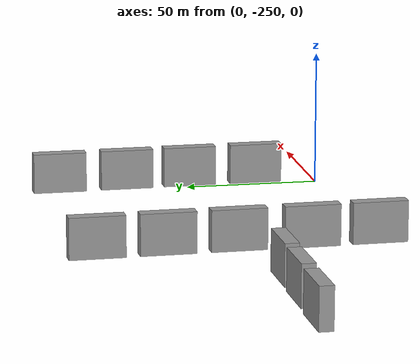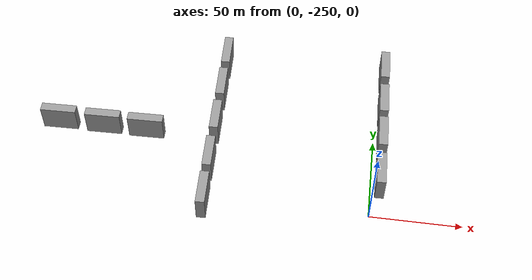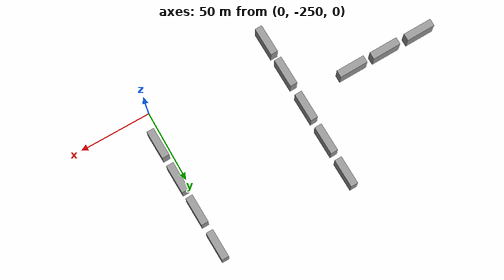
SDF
<sdf version="1.6">
 <world name="darpa_boxes">
  <model name="box_2">
   <link name="link">
    <inertial>
     <mass>1</mass>
     <inertia>
      <ixx>0.166667</ixx>
      <ixy>0</ixy>
      <ixz>0</ixz>
      <iyy>0.166667</iyy>
      <iyz>0</iyz>
      <izz>0.166667</izz>
     </inertia>
     <pose>0 0 7.5 0 -0 0</pose>
    </inertial>
    <visual name="visual">
     <geometry><box><size>5 20 15</size></box></geometry>
     <material>
      <script><name>Gazebo/Grey</name><uri>file://media/materials/scripts/gazebo.material</uri></script>
      <shader type="vertex"><normal_map>_default_</normal_map></shader>
      <ambient>0.3 0.3 0.3 1</ambient>
      <diffuse>0.7 0.7 0.7 1</diffuse>
      <specular>0.01 0.01 0.01 1</specular>
      <emissive>0 0 0 1</emissive>
     </material>
     <pose>0 0 7.5 0 -0 0</pose>
    </visual>
    <collision name="collision">
     <pose>0 0 7.5 0 -0 0</pose>
     <geometry><box><size>5 20 15</size></box></geometry>
     <surface>
      <friction>
       <ode><mu>1</mu><mu2>1</mu2><fdir1>0 0 0</fdir1><slip1>0</slip1><slip2>0</slip2></ode>
       <torsional>
        <coefficient>1</coefficient>
        <patch_radius>0</patch_radius>
        <surface_radius>0</surface_radius>
        <use_patch_radius>1</use_patch_radius>
        <ode><slip>0</slip></ode>
       </torsional>
      </friction>
      <bounce><restitution_coefficient>0</restitution_coefficient><threshold>1e+06</threshold></bounce>
      <contact>
       <collide_without_contact>0</collide_without_contact>
       <collide_without_contact_bitmask>1</collide_without_contact_bitmask>
       <collide_bitmask>1</collide_bitmask>
       <ode>
        <soft_cfm>0</soft_cfm>
        <soft_erp>0.2</soft_erp>
        <kp>1e+13</kp>
        <kd>1</kd>
        <max_vel>0.01</max_vel>
        <min_depth>0</min_depth>
       </ode>
       <bullet>
        <split_impulse>1</split_impulse>
        <split_impulse_penetration_threshold>-0.01</split_impulse_penetration_threshold>
        <soft_cfm>0</soft_cfm>
        <soft_erp>0.2</soft_erp>
        <kp>1e+13</kp>
        <kd>1</kd>
       </bullet>
      </contact>
     </surface>
    </collision>
   </link>
   <static>1</static>
   <pose>3.68929 -151.222 -0.049551 0.005047 -0.000114 0.022472</pose>
  </model>
  <model name="box_3">
   <link name="link">
    <inertial>
     <mass>1</mass>
     <inertia>
      <ixx>0.166667</ixx>
      <ixy>0</ixy>
      <ixz>0</ixz>
      <iyy>0.166667</iyy>
      <iyz>0</iyz>
      <izz>0.166667</izz>
     </inertia>
     <pose>0 0 7.5 0 -0 0</pose>
    </inertial>
    <visual name="visual">
     <geometry><box><size>5 20 15</size></box></geometry>
     <material>
      <script><name>Gazebo/Grey</name><uri>file://media/materials/scripts/gazebo.material</uri></script>
      <shader type="vertex"><normal_map>_default_</normal_map></shader>
      <ambient>0.3 0.3 0.3 1</ambient>
      <diffuse>0.7 0.7 0.7 1</diffuse>
      <specular>0.01 0.01 0.01 1</specular>
      <emissive>0 0 0 1</emissive>
     </material>
     <pose>0 0 7.5 0 -0 0</pose>
    </visual>
    <collision name="collision">
     <pose>0 0 7.5 0 -0 0</pose>
     <geometry><box><size>5 20 15</size></box></geometry>
     <surface>
      <friction>
       <ode><mu>1</mu><mu2>1</mu2><fdir1>0 0 0</fdir1><slip1>0</slip1><slip2>0</slip2></ode>
       <torsional>
        <coefficient>1</coefficient>
        <patch_radius>0</patch_radius>
        <surface_radius>0</surface_radius>
        <use_patch_radius>1</use_patch_radius>
        <ode><slip>0</slip></ode>
       </torsional>
      </friction>
      <bounce><restitution_coefficient>0</restitution_coefficient><threshold>1e+06</threshold></bounce>
      <contact>
       <collide_without_contact>0</collide_without_contact>
       <collide_without_contact_bitmask>1</collide_without_contact_bitmask>
       <collide_bitmask>1</collide_bitmask>
       <ode>
        <soft_cfm>0</soft_cfm>
        <soft_erp>0.2</soft_erp>
        <kp>1e+13</kp>
        <kd>1</kd>
        <max_vel>0.01</max_vel>
        <min_depth>0</min_depth>
       </ode>
       <bullet>
        <split_impulse>1</split_impulse>
        <split_impulse_penetration_threshold>-0.01</split_impulse_penetration_threshold>
        <soft_cfm>0</soft_cfm>
        <soft_erp>0.2</soft_erp>
        <kp>1e+13</kp>
        <kd>1</kd>
       </bullet>
      </contact>
     </surface>
    </collision>
   </link>
   <static>1</static>
   <pose>4.1621 -176.965 -0.049551 0.005047 -0.000114 0.022472</pose>
  </model>
  <model name="box_4">
   <link name="link">
    <inertial>
     <mass>1</mass>
     <inertia>
      <ixx>0.166667</ixx>
      <ixy>0</ixy>
      <ixz>0</ixz>
      <iyy>0.166667</iyy>
      <iyz>0</iyz>
      <izz>0.166667</izz>
     </inertia>
     <pose>0 0 7.5 0 -0 0</pose>
    </inertial>
    <visual name="visual">
     <geometry><box><size>5 20 15</size></box></geometry>
     <material>
      <script><name>Gazebo/Grey</name><uri>file://media/materials/scripts/gazebo.material</uri></script>
      <shader type="vertex"><normal_map>_default_</normal_map></shader>
      <ambient>0.3 0.3 0.3 1</ambient>
      <diffuse>0.7 0.7 0.7 1</diffuse>
      <specular>0.01 0.01 0.01 1</specular>
      <emissive>0 0 0 1</emissive>
     </material>
     <pose>0 0 7.5 0 -0 0</pose>
    </visual>
    <collision name="collision">
     <pose>0 0 7.5 0 -0 0</pose>
     <geometry><box><size>5 20 15</size></box></geometry>
     <surface>
      <friction>
       <ode><mu>1</mu><mu2>1</mu2><fdir1>0 0 0</fdir1><slip1>0</slip1><slip2>0</slip2></ode>
       <torsional>
        <coefficient>1</coefficient>
        <patch_radius>0</patch_radius>
        <surface_radius>0</surface_radius>
        <use_patch_radius>1</use_patch_radius>
        <ode><slip>0</slip></ode>
       </torsional>
      </friction>
      <bounce><restitution_coefficient>0</restitution_coefficient><threshold>1e+06</threshold></bounce>
      <contact>
       <collide_without_contact>0</collide_without_contact>
       <collide_without_contact_bitmask>1</collide_without_contact_bitmask>
       <collide_bitmask>1</collide_bitmask>
       <ode>
        <soft_cfm>0</soft_cfm>
        <soft_erp>0.2</soft_erp>
        <kp>1e+13</kp>
        <kd>1</kd>
        <max_vel>0.01</max_vel>
        <min_depth>0</min_depth>
       </ode>
       <bullet>
        <split_impulse>1</split_impulse>
        <split_impulse_penetration_threshold>-0.01</split_impulse_penetration_threshold>
        <soft_cfm>0</soft_cfm>
        <soft_erp>0.2</soft_erp>
        <kp>1e+13</kp>
        <kd>1</kd>
       </bullet>
      </contact>
     </surface>
    </collision>
   </link>
   <static>1</static>
   <pose>4.69386 -201.317 -0.049551 0.005047 -0.000114 0.022472</pose>
  </model>
  <model name="box_5">
   <link name="link">
    <inertial>
     <mass>1</mass>
     <inertia>
      <ixx>0.166667</ixx>
      <ixy>0</ixy>
      <ixz>0</ixz>
      <iyy>0.166667</iyy>
      <iyz>0</iyz>
      <izz>0.166667</izz>
     </inertia>
     <pose>0 0 7.5 0 -0 0</pose>
    </inertial>
    <visual name="visual">
     <geometry><box><size>5 20 15</size></box></geometry>
     <material>
      <script><name>Gazebo/Grey</name><uri>file://media/materials/scripts/gazebo.material</uri></script>
      <shader type="vertex"><normal_map>_default_</normal_map></shader>
      <ambient>0.3 0.3 0.3 1</ambient>
      <diffuse>0.7 0.7 0.7 1</diffuse>
      <specular>0.01 0.01 0.01 1</specular>
      <emissive>0 0 0 1</emissive>
     </material>
     <pose>0 0 7.5 0 -0 0</pose>
    </visual>
    <collision name="collision">
     <pose>0 0 7.5 0 -0 0</pose>
     <geometry><box><size>5 20 15</size></box></geometry>
     <surface>
      <friction>
       <ode><mu>1</mu><mu2>1</mu2><fdir1>0 0 0</fdir1><slip1>0</slip1><slip2>0</slip2></ode>
       <torsional>
        <coefficient>1</coefficient>
        <patch_radius>0</patch_radius>
        <surface_radius>0</surface_radius>
        <use_patch_radius>1</use_patch_radius>
        <ode><slip>0</slip></ode>
       </torsional>
      </friction>
      <bounce><restitution_coefficient>0</restitution_coefficient><threshold>1e+06</threshold></bounce>
      <contact>
       <collide_without_contact>0</collide_without_contact>
       <collide_without_contact_bitmask>1</collide_without_contact_bitmask>
       <collide_bitmask>1</collide_bitmask>
       <ode>
        <soft_cfm>0</soft_cfm>
        <soft_erp>0.2</soft_erp>
        <kp>1e+13</kp>
        <kd>1</kd>
        <max_vel>0.01</max_vel>
        <min_depth>0</min_depth>
       </ode>
       <bullet>
        <split_impulse>1</split_impulse>
        <split_impulse_penetration_threshold>-0.01</split_impulse_penetration_threshold>
        <soft_cfm>0</soft_cfm>
        <soft_erp>0.2</soft_erp>
        <kp>1e+13</kp>
        <kd>1</kd>
       </bullet>
      </contact>
     </surface>
    </collision>
   </link>
   <static>1</static>
   <pose>4.85871 -226.99 -0.049551 0.005047 -0.000114 0.022472</pose>
  </model>
  <model name="box_40">
   <link name="link">
    <inertial>
     <mass>1</mass>
     <inertia>
      <ixx>0.166667</ixx>
      <ixy>0</ixy>
      <ixz>0</ixz>
      <iyy>0.166667</iyy>
      <iyz>0</iyz>
      <izz>0.166667</izz>
     </inertia>
     <pose>0 0 7.5 0 -0 0</pose>
    </inertial>
    <visual name="visual">
     <geometry><box><size>5 20 15</size></box></geometry>
     <material>
      <script><name>Gazebo/Grey</name><uri>file://media/materials/scripts/gazebo.material</uri></script>
      <shader type="vertex"><normal_map>_default_</normal_map></shader>
      <ambient>0.3 0.3 0.3 1</ambient>
      <diffuse>0.7 0.7 0.7 1</diffuse>
      <specular>0.01 0.01 0.01 1</specular>
      <emissive>0 0 0 1</emissive>
     </material>
     <pose>0 0 7.5 0 -0 0</pose>
    </visual>
    <collision name="collision">
     <pose>0 0 7.5 0 -0 0</pose>
     <geometry><box><size>5 20 15</size></box></geometry>
     <surface>
      <friction>
       <ode><mu>1</mu><mu2>1</mu2><fdir1>0 0 0</fdir1><slip1>0</slip1><slip2>0</slip2></ode>
       <torsional>
        <coefficient>1</coefficient>
        <patch_radius>0</patch_radius>
        <surface_radius>0</surface_radius>
        <use_patch_radius>1</use_patch_radius>
        <ode><slip>0</slip></ode>
       </torsional>
      </friction>
      <bounce><restitution_coefficient>0</restitution_coefficient><threshold>1e+06</threshold></bounce>
      <contact>
       <collide_without_contact>0</collide_without_contact>
       <collide_without_contact_bitmask>1</collide_without_contact_bitmask>
       <collide_bitmask>1</collide_bitmask>
       <ode>
        <soft_cfm>0</soft_cfm>
        <soft_erp>0.2</soft_erp>
        <kp>1e+13</kp>
        <kd>1</kd>
        <max_vel>0.01</max_vel>
        <min_depth>0</min_depth>
       </ode>
       <bullet>
        <split_impulse>1</split_impulse>
        <split_impulse_penetration_threshold>-0.01</split_impulse_penetration_threshold>
        <soft_cfm>0</soft_cfm>
        <soft_erp>0.2</soft_erp>
        <kp>1e+13</kp>
        <kd>1</kd>
       </bullet>
      </contact>
     </surface>
    </collision>
   </link>
   <static>1</static>
   <pose>-89.2435 -252.007 -0.049551 0.005046 -0.000145 0.028592</pose>
  </model>
  <model name="box_41">
   <link name="link">
    <inertial>
     <mass>1</mass>
     <inertia>
      <ixx>0.166667</ixx>
      <ixy>0</ixy>
      <ixz>0</ixz>
      <iyy>0.166667</iyy>
      <iyz>0</iyz>
      <izz>0.166667</izz>
     </inertia>
     <pose>0 0 7.5 0 -0 0</pose>
    </inertial>
    <visual name="visual">
     <geometry><box><size>5 20 15</size></box></geometry>
     <material>
      <script><name>Gazebo/Grey</name><uri>file://media/materials/scripts/gazebo.material</uri></script>
      <shader type="vertex"><normal_map>_default_</normal_map></shader>
      <ambient>0.3 0.3 0.3 1</ambient>
      <diffuse>0.7 0.7 0.7 1</diffuse>
      <specular>0.01 0.01 0.01 1</specular>
      <emissive>0 0 0 1</emissive>
     </material>
     <pose>0 0 7.5 0 -0 0</pose>
    </visual>
    <collision name="collision">
     <pose>0 0 7.5 0 -0 0</pose>
     <geometry><box><size>5 20 15</size></box></geometry>
     <surface>
      <friction>
       <ode><mu>1</mu><mu2>1</mu2><fdir1>0 0 0</fdir1><slip1>0</slip1><slip2>0</slip2></ode>
       <torsional>
        <coefficient>1</coefficient>
        <patch_radius>0</patch_radius>
        <surface_radius>0</surface_radius>
        <use_patch_radius>1</use_patch_radius>
        <ode><slip>0</slip></ode>
       </torsional>
      </friction>
      <bounce><restitution_coefficient>0</restitution_coefficient><threshold>1e+06</threshold></bounce>
      <contact>
       <collide_without_contact>0</collide_without_contact>
       <collide_without_contact_bitmask>1</collide_without_contact_bitmask>
       <collide_bitmask>1</collide_bitmask>
       <ode>
        <soft_cfm>0</soft_cfm>
        <soft_erp>0.2</soft_erp>
        <kp>1e+13</kp>
        <kd>1</kd>
        <max_vel>0.01</max_vel>
        <min_depth>0</min_depth>
       </ode>
       <bullet>
        <split_impulse>1</split_impulse>
        <split_impulse_penetration_threshold>-0.01</split_impulse_penetration_threshold>
        <soft_cfm>0</soft_cfm>
        <soft_erp>0.2</soft_erp>
        <kp>1e+13</kp>
        <kd>1</kd>
       </bullet>
      </contact>
     </surface>
    </collision>
   </link>
   <static>1</static>
   <pose>-89.8164 -227.586 -0.049551 0.005046 -0.000145 0.028592</pose>
  </model>
  <model name="box_42">
   <link name="link">
    <inertial>
     <mass>1</mass>
     <inertia>
      <ixx>0.166667</ixx>
      <ixy>0</ixy>
      <ixz>0</ixz>
      <iyy>0.166667</iyy>
      <iyz>0</iyz>
      <izz>0.166667</izz>
     </inertia>
     <pose>0 0 7.5 0 -0 0</pose>
    </inertial>
    <visual name="visual">
     <geometry><box><size>5 20 15</size></box></geometry>
     <material>
      <script><name>Gazebo/Grey</name><uri>file://media/materials/scripts/gazebo.material</uri></script>
      <shader type="vertex"><normal_map>_default_</normal_map></shader>
      <ambient>0.3 0.3 0.3 1</ambient>
      <diffuse>0.7 0.7 0.7 1</diffuse>
      <specular>0.01 0.01 0.01 1</specular>
      <emissive>0 0 0 1</emissive>
     </material>
     <pose>0 0 7.5 0 -0 0</pose>
    </visual>
    <collision name="collision">
     <pose>0 0 7.5 0 -0 0</pose>
     <geometry><box><size>5 20 15</size></box></geometry>
     <surface>
      <friction>
       <ode><mu>1</mu><mu2>1</mu2><fdir1>0 0 0</fdir1><slip1>0</slip1><slip2>0</slip2></ode>
       <torsional>
        <coefficient>1</coefficient>
        <patch_radius>0</patch_radius>
        <surface_radius>0</surface_radius>
        <use_patch_radius>1</use_patch_radius>
        <ode><slip>0</slip></ode>
       </torsional>
      </friction>
      <bounce><restitution_coefficient>0</restitution_coefficient><threshold>1e+06</threshold></bounce>
      <contact>
       <collide_without_contact>0</collide_without_contact>
       <collide_without_contact_bitmask>1</collide_without_contact_bitmask>
       <collide_bitmask>1</collide_bitmask>
       <ode>
        <soft_cfm>0</soft_cfm>
        <soft_erp>0.2</soft_erp>
        <kp>1e+13</kp>
        <kd>1</kd>
        <max_vel>0.01</max_vel>
        <min_depth>0</min_depth>
       </ode>
       <bullet>
        <split_impulse>1</split_impulse>
        <split_impulse_penetration_threshold>-0.01</split_impulse_penetration_threshold>
        <soft_cfm>0</soft_cfm>
        <soft_erp>0.2</soft_erp>
        <kp>1e+13</kp>
        <kd>1</kd>
       </bullet>
      </contact>
     </surface>
    </collision>
   </link>
   <static>1</static>
   <pose>-90.0613 -201.445 -0.049551 0.005046 -0.000145 0.028592</pose>
  </model>
  <model name="box_43">
   <link name="link">
    <inertial>
     <mass>1</mass>
     <inertia>
      <ixx>0.166667</ixx>
      <ixy>0</ixy>
      <ixz>0</ixz>
      <iyy>0.166667</iyy>
      <iyz>0</iyz>
      <izz>0.166667</izz>
     </inertia>
     <pose>0 0 7.5 0 -0 0</pose>
    </inertial>
    <visual name="visual">
     <geometry><box><size>5 20 15</size></box></geometry>
     <material>
      <script><name>Gazebo/Grey</name><uri>file://media/materials/scripts/gazebo.material</uri></script>
      <shader type="vertex"><normal_map>_default_</normal_map></shader>
      <ambient>0.3 0.3 0.3 1</ambient>
      <diffuse>0.7 0.7 0.7 1</diffuse>
      <specular>0.01 0.01 0.01 1</specular>
      <emissive>0 0 0 1</emissive>
     </material>
     <pose>0 0 7.5 0 -0 0</pose>
    </visual>
    <collision name="collision">
     <pose>0 0 7.5 0 -0 0</pose>
     <geometry><box><size>5 20 15</size></box></geometry>
     <surface>
      <friction>
       <ode><mu>1</mu><mu2>1</mu2><fdir1>0 0 0</fdir1><slip1>0</slip1><slip2>0</slip2></ode>
       <torsional>
        <coefficient>1</coefficient>
        <patch_radius>0</patch_radius>
        <surface_radius>0</surface_radius>
        <use_patch_radius>1</use_patch_radius>
        <ode><slip>0</slip></ode>
       </torsional>
      </friction>
      <bounce><restitution_coefficient>0</restitution_coefficient><threshold>1e+06</threshold></bounce>
      <contact>
       <collide_without_contact>0</collide_without_contact>
       <collide_without_contact_bitmask>1</collide_without_contact_bitmask>
       <collide_bitmask>1</collide_bitmask>
       <ode>
        <soft_cfm>0</soft_cfm>
        <soft_erp>0.2</soft_erp>
        <kp>1e+13</kp>
        <kd>1</kd>
        <max_vel>0.01</max_vel>
        <min_depth>0</min_depth>
       </ode>
       <bullet>
        <split_impulse>1</split_impulse>
        <split_impulse_penetration_threshold>-0.01</split_impulse_penetration_threshold>
        <soft_cfm>0</soft_cfm>
        <soft_erp>0.2</soft_erp>
        <kp>1e+13</kp>
        <kd>1</kd>
       </bullet>
      </contact>
     </surface>
    </collision>
   </link>
   <static>1</static>
   <pose>-90.425 -176.407 -0.049551 0.005046 -0.000145 0.028592</pose>
  </model>
  <model name="box_44">
   <link name="link">
    <inertial>
     <mass>1</mass>
     <inertia>
      <ixx>0.166667</ixx>
      <ixy>0</ixy>
      <ixz>0</ixz>
      <iyy>0.166667</iyy>
      <iyz>0</iyz>
      <izz>0.166667</izz>
     </inertia>
     <pose>0 0 7.5 0 -0 0</pose>
    </inertial>
    <visual name="visual">
     <geometry><box><size>5 20 15</size></box></geometry>
     <material>
      <script><name>Gazebo/Grey</name><uri>file://media/materials/scripts/gazebo.material</uri></script>
      <shader type="vertex"><normal_map>_default_</normal_map></shader>
      <ambient>0.3 0.3 0.3 1</ambient>
      <diffuse>0.7 0.7 0.7 1</diffuse>
      <specular>0.01 0.01 0.01 1</specular>
      <emissive>0 0 0 1</emissive>
     </material>
     <pose>0 0 7.5 0 -0 0</pose>
    </visual>
    <collision name="collision">
     <pose>0 0 7.5 0 -0 0</pose>
     <geometry><box><size>5 20 15</size></box></geometry>
     <surface>
      <friction>
       <ode><mu>1</mu><mu2>1</mu2><fdir1>0 0 0</fdir1><slip1>0</slip1><slip2>0</slip2></ode>
       <torsional>
        <coefficient>1</coefficient>
        <patch_radius>0</patch_radius>
        <surface_radius>0</surface_radius>
        <use_patch_radius>1</use_patch_radius>
        <ode><slip>0</slip></ode>
       </torsional>
      </friction>
      <bounce><restitution_coefficient>0</restitution_coefficient><threshold>1e+06</threshold></bounce>
      <contact>
       <collide_without_contact>0</collide_without_contact>
       <collide_without_contact_bitmask>1</collide_without_contact_bitmask>
       <collide_bitmask>1</collide_bitmask>
       <ode>
        <soft_cfm>0</soft_cfm>
        <soft_erp>0.2</soft_erp>
        <kp>1e+13</kp>
        <kd>1</kd>
        <max_vel>0.01</max_vel>
        <min_depth>0</min_depth>
       </ode>
       <bullet>
        <split_impulse>1</split_impulse>
        <split_impulse_penetration_threshold>-0.01</split_impulse_penetration_threshold>
        <soft_cfm>0</soft_cfm>
        <soft_erp>0.2</soft_erp>
        <kp>1e+13</kp>
        <kd>1</kd>
       </bullet>
      </contact>
     </surface>
    </collision>
   </link>
   <static>1</static>
   <pose>-90.8552 -151.555 -0.049551 0.005046 -0.000145 0.028592</pose>
  </model>
  <model name="box_62">
   <link name="link">
    <inertial>
     <mass>1</mass>
     <inertia>
      <ixx>0.166667</ixx>
      <ixy>0</ixy>
      <ixz>0</ixz>
      <iyy>0.166667</iyy>
      <iyz>0</iyz>
      <izz>0.166667</izz>
     </inertia>
     <pose>0 0 7.5 0 -0 0</pose>
    </inertial>
    <visual name="visual">
     <geometry><box><size>5 20 15</size></box></geometry>
     <material>
      <script><name>Gazebo/Grey</name><uri>file://media/materials/scripts/gazebo.material</uri></script>
      <shader type="vertex"><normal_map>_default_</normal_map></shader>
      <ambient>0.3 0.3 0.3 1</ambient>
      <diffuse>0.7 0.7 0.7 1</diffuse>
      <specular>0.01 0.01 0.01 1</specular>
      <emissive>0 0 0 1</emissive>
     </material>
     <pose>0 0 7.5 0 -0 0</pose>
    </visual>
    <collision name="collision">
     <pose>0 0 7.5 0 -0 0</pose>
     <geometry><box><size>5 20 15</size></box></geometry>
     <surface>
      <friction>
       <ode><mu>1</mu><mu2>1</mu2><fdir1>0 0 0</fdir1><slip1>0</slip1><slip2>0</slip2></ode>
       <torsional>
        <coefficient>1</coefficient>
        <patch_radius>0</patch_radius>
        <surface_radius>0</surface_radius>
        <use_patch_radius>1</use_patch_radius>
        <ode><slip>0</slip></ode>
       </torsional>
      </friction>
      <bounce><restitution_coefficient>0</restitution_coefficient><threshold>1e+06</threshold></bounce>
      <contact>
       <collide_without_contact>0</collide_without_contact>
       <collide_without_contact_bitmask>1</collide_without_contact_bitmask>
       <collide_bitmask>1</collide_bitmask>
       <ode>
        <soft_cfm>0</soft_cfm>
        <soft_erp>0.2</soft_erp>
        <kp>1e+13</kp>
        <kd>1</kd>
        <max_vel>0.01</max_vel>
        <min_depth>0</min_depth>
       </ode>
       <bullet>
        <split_impulse>1</split_impulse>
        <split_impulse_penetration_threshold>-0.01</split_impulse_penetration_threshold>
        <soft_cfm>0</soft_cfm>
        <soft_erp>0.2</soft_erp>
        <kp>1e+13</kp>
        <kd>1</kd>
       </bullet>
      </contact>
     </surface>
    </collision>
   </link>
   <static>1</static>
   <pose>-179.036 -209.121 -0.049551 8.7e-05 0.005047 -1.55363</pose>
  </model>
  <model name="box_63">
   <link name="link">
    <inertial>
     <mass>1</mass>
     <inertia>
      <ixx>0.166667</ixx>
      <ixy>0</ixy>
      <ixz>0</ixz>
      <iyy>0.166667</iyy>
      <iyz>0</iyz>
      <izz>0.166667</izz>
     </inertia>
     <pose>0 0 7.5 0 -0 0</pose>
    </inertial>
    <visual name="visual">
     <geometry><box><size>5 20 15</size></box></geometry>
     <material>
      <script><name>Gazebo/Grey</name><uri>file://media/materials/scripts/gazebo.material</uri></script>
      <shader type="vertex"><normal_map>_default_</normal_map></shader>
      <ambient>0.3 0.3 0.3 1</ambient>
      <diffuse>0.7 0.7 0.7 1</diffuse>
      <specular>0.01 0.01 0.01 1</specular>
      <emissive>0 0 0 1</emissive>
     </material>
     <pose>0 0 7.5 0 -0 0</pose>
    </visual>
    <collision name="collision">
     <pose>0 0 7.5 0 -0 0</pose>
     <geometry><box><size>5 20 15</size></box></geometry>
     <surface>
      <friction>
       <ode><mu>1</mu><mu2>1</mu2><fdir1>0 0 0</fdir1><slip1>0</slip1><slip2>0</slip2></ode>
       <torsional>
        <coefficient>1</coefficient>
        <patch_radius>0</patch_radius>
        <surface_radius>0</surface_radius>
        <use_patch_radius>1</use_patch_radius>
        <ode><slip>0</slip></ode>
       </torsional>
      </friction>
      <bounce><restitution_coefficient>0</restitution_coefficient><threshold>1e+06</threshold></bounce>
      <contact>
       <collide_without_contact>0</collide_without_contact>
       <collide_without_contact_bitmask>1</collide_without_contact_bitmask>
       <collide_bitmask>1</collide_bitmask>
       <ode>
        <soft_cfm>0</soft_cfm>
        <soft_erp>0.2</soft_erp>
        <kp>1e+13</kp>
        <kd>1</kd>
        <max_vel>0.01</max_vel>
        <min_depth>0</min_depth>
       </ode>
       <bullet>
        <split_impulse>1</split_impulse>
        <split_impulse_penetration_threshold>-0.01</split_impulse_penetration_threshold>
        <soft_cfm>0</soft_cfm>
        <soft_erp>0.2</soft_erp>
        <kp>1e+13</kp>
        <kd>1</kd>
       </bullet>
      </contact>
     </surface>
    </collision>
   </link>
   <static>1</static>
   <pose>-153.509 -209.322 -0.049551 8.7e-05 0.005047 -1.55363</pose>
  </model>
  <model name="box_64">
   <link name="link">
    <inertial>
     <mass>1</mass>
     <inertia>
      <ixx>0.166667</ixx>
      <ixy>0</ixy>
      <ixz>0</ixz>
      <iyy>0.166667</iyy>
      <iyz>0</iyz>
      <izz>0.166667</izz>
     </inertia>
     <pose>0 0 7.5 0 -0 0</pose>
    </inertial>
    <visual name="visual">
     <geometry><box><size>5 20 15</size></box></geometry>
     <material>
      <script><name>Gazebo/Grey</name><uri>file://media/materials/scripts/gazebo.material</uri></script>
      <shader type="vertex"><normal_map>_default_</normal_map></shader>
      <ambient>0.3 0.3 0.3 1</ambient>
      <diffuse>0.7 0.7 0.7 1</diffuse>
      <specular>0.01 0.01 0.01 1</specular>
      <emissive>0 0 0 1</emissive>
     </material>
     <pose>0 0 7.5 0 -0 0</pose>
    </visual>
    <collision name="collision">
     <pose>0 0 7.5 0 -0 0</pose>
     <geometry><box><size>5 20 15</size></box></geometry>
     <surface>
      <friction>
       <ode><mu>1</mu><mu2>1</mu2><fdir1>0 0 0</fdir1><slip1>0</slip1><slip2>0</slip2></ode>
       <torsional>
        <coefficient>1</coefficient>
        <patch_radius>0</patch_radius>
        <surface_radius>0</surface_radius>
        <use_patch_radius>1</use_patch_radius>
        <ode><slip>0</slip></ode>
       </torsional>
      </friction>
      <bounce><restitution_coefficient>0</restitution_coefficient><threshold>1e+06</threshold></bounce>
      <contact>
       <collide_without_contact>0</collide_without_contact>
       <collide_without_contact_bitmask>1</collide_without_contact_bitmask>
       <collide_bitmask>1</collide_bitmask>
       <ode>
        <soft_cfm>0</soft_cfm>
        <soft_erp>0.2</soft_erp>
        <kp>1e+13</kp>
        <kd>1</kd>
        <max_vel>0.01</max_vel>
        <min_depth>0</min_depth>
       </ode>
       <bullet>
        <split_impulse>1</split_impulse>
        <split_impulse_penetration_threshold>-0.01</split_impulse_penetration_threshold>
        <soft_cfm>0</soft_cfm>
        <soft_erp>0.2</soft_erp>
        <kp>1e+13</kp>
        <kd>1</kd>
       </bullet>
      </contact>
     </surface>
    </collision>
   </link>
   <static>1</static>
   <pose>-128.882 -209.402 -0.049551 8.7e-05 0.005047 -1.55363</pose>
  </model>
 </world>
</sdf>
